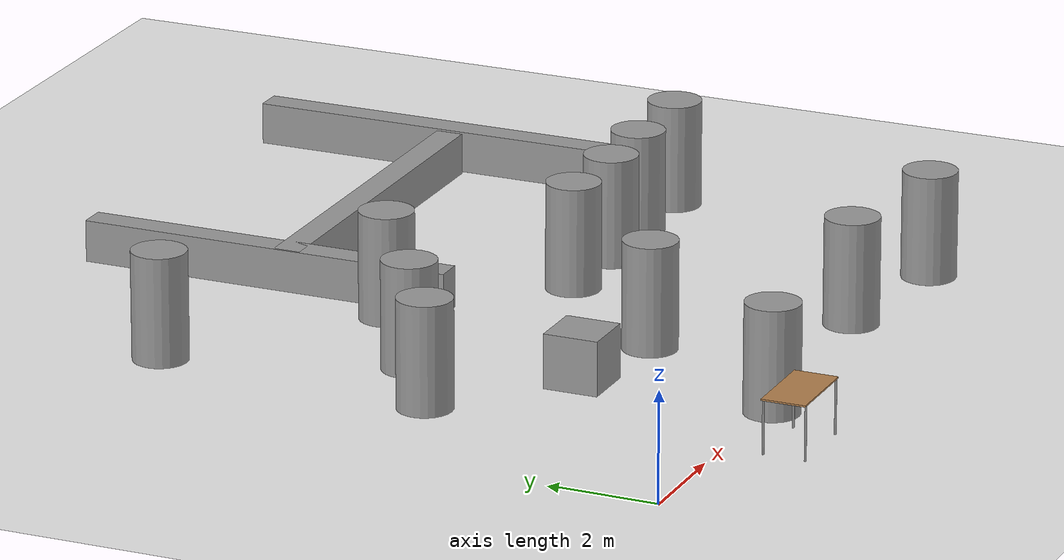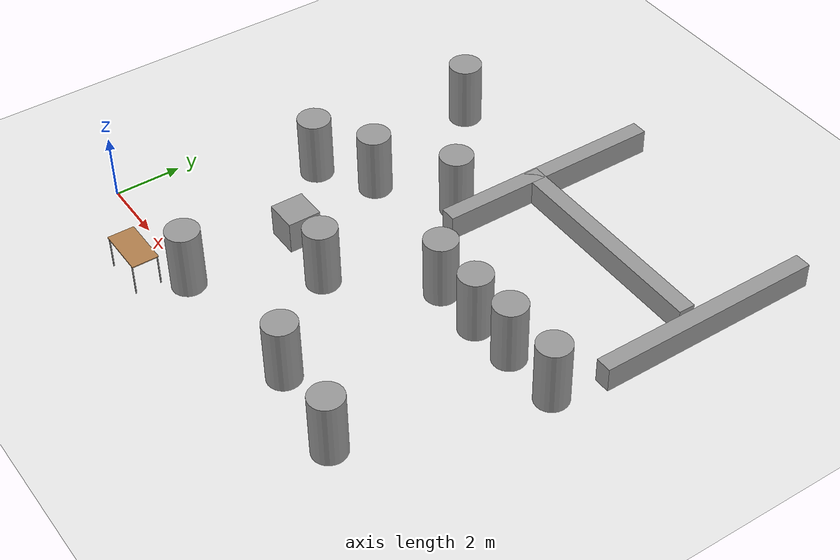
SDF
<sdf version="1.6">
 <world name="default">
  <model name="ground_plane">
   <static>1</static>
   <link name="link">
    <collision name="collision">
     <geometry><plane><normal>0 0 1</normal><size>100 100</size></plane></geometry>
     <surface><friction><ode><mu>100</mu><mu2>50</mu2></ode></friction></surface>
    </collision>
    <visual name="visual">
     <geometry><plane><normal>0 0 1</normal><size>100 100</size></plane></geometry>
     <material>
      <script><uri>file://media/materials/scripts/gazebo.material</uri><name>Gazebo/White</name></script>
     </material>
    </visual>
   </link>
  </model>
  <model name="unit_cylinder_5">
   <link name="link">
    <inertial>
     <mass>1</mass>
     <inertia><ixx>0.145833</ixx><ixy>0</ixy><ixz>0</ixz><iyy>0.145833</iyy><iyz>0</iyz><izz>0.125</izz></inertia>
    </inertial>
    <visual name="visual">
     <geometry><cylinder><radius>0.5</radius><length>2</length></cylinder></geometry>
     <material>
      <script><name>Gazebo/Grey</name><uri>file://media/materials/scripts/gazebo.material</uri></script>
      <ambient>0.3 0.3 0.3 1</ambient>
      <diffuse>0.7 0.7 0.7 1</diffuse>
      <specular>0.01 0.01 0.01 1</specular>
      <emissive>0 0 0 1</emissive>
      <shader type="vertex"><normal_map>__default__</normal_map></shader>
     </material>
    </visual>
    <collision name="collision">
     <geometry><cylinder><radius>0.5</radius><length>2</length></cylinder></geometry>
     <surface>
      <friction>
       <ode><mu>1</mu><mu2>1</mu2><fdir1>0 0 0</fdir1><slip1>0</slip1><slip2>0</slip2></ode>
       <torsional>
        <coefficient>1</coefficient>
        <patch_radius>0</patch_radius>
        <surface_radius>0</surface_radius>
        <use_patch_radius>1</use_patch_radius>
        <ode><slip>0</slip></ode>
       </torsional>
      </friction>
      <bounce><restitution_coefficient>0</restitution_coefficient><threshold>1e+06</threshold></bounce>
      <contact>
       <collide_without_contact>0</collide_without_contact>
       <collide_without_contact_bitmask>1</collide_without_contact_bitmask>
       <collide_bitmask>1</collide_bitmask>
       <ode>
        <soft_cfm>0</soft_cfm>
        <soft_erp>0.2</soft_erp>
        <kp>1e+13</kp>
        <kd>1</kd>
        <max_vel>0.01</max_vel>
        <min_depth>0</min_depth>
       </ode>
       <bullet>
        <split_impulse>1</split_impulse>
        <split_impulse_penetration_threshold>-0.01</split_impulse_penetration_threshold>
        <soft_cfm>0</soft_cfm>
        <soft_erp>0.2</soft_erp>
        <kp>1e+13</kp>
        <kd>1</kd>
       </bullet>
      </contact>
     </surface>
    </collision>
   </link>
   <static>0</static>
   <pose>4.65515 -0.124311 0.999884 2.2e-05 -2e-06 0.004615</pose>
  </model>
  <model name="unit_cylinder_5_clone_6">
   <link name="link">
    <inertial>
     <mass>1</mass>
     <inertia><ixx>0.145833</ixx><ixy>0</ixy><ixz>0</ixz><iyy>0.145833</iyy><iyz>0</iyz><izz>0.125</izz></inertia>
    </inertial>
    <visual name="visual">
     <geometry><cylinder><radius>0.5</radius><length>2</length></cylinder></geometry>
     <material>
      <script><name>Gazebo/Grey</name><uri>file://media/materials/scripts/gazebo.material</uri></script>
      <ambient>0.3 0.3 0.3 1</ambient>
      <diffuse>0.7 0.7 0.7 1</diffuse>
      <specular>0.01 0.01 0.01 1</specular>
      <emissive>0 0 0 1</emissive>
      <shader type="vertex"><normal_map>__default__</normal_map></shader>
     </material>
    </visual>
    <collision name="collision">
     <geometry><cylinder><radius>0.5</radius><length>2</length></cylinder></geometry>
     <surface>
      <friction>
       <ode><mu>1</mu><mu2>1</mu2><fdir1>0 0 0</fdir1><slip1>0</slip1><slip2>0</slip2></ode>
       <torsional>
        <coefficient>1</coefficient>
        <patch_radius>0</patch_radius>
        <surface_radius>0</surface_radius>
        <use_patch_radius>1</use_patch_radius>
        <ode><slip>0</slip></ode>
       </torsional>
      </friction>
      <bounce><restitution_coefficient>0</restitution_coefficient><threshold>1e+06</threshold></bounce>
      <contact>
       <collide_without_contact>0</collide_without_contact>
       <collide_without_contact_bitmask>1</collide_without_contact_bitmask>
       <collide_bitmask>1</collide_bitmask>
       <ode>
        <soft_cfm>0</soft_cfm>
        <soft_erp>0.2</soft_erp>
        <kp>1e+13</kp>
        <kd>1</kd>
        <max_vel>0.01</max_vel>
        <min_depth>0</min_depth>
       </ode>
       <bullet>
        <split_impulse>1</split_impulse>
        <split_impulse_penetration_threshold>-0.01</split_impulse_penetration_threshold>
        <soft_cfm>0</soft_cfm>
        <soft_erp>0.2</soft_erp>
        <kp>1e+13</kp>
        <kd>1</kd>
       </bullet>
      </contact>
     </surface>
    </collision>
   </link>
   <static>0</static>
   <pose>6.68619 2.97584 0.999884 2.2e-05 -1e-06 1.9e-05</pose>
  </model>
  <model name="unit_box_0">
   <pose>4.62964 3.37332 0.499944 2e-06 0.000108 -0.001429</pose>
   <link name="link">
    <inertial>
     <mass>1</mass>
     <inertia>
      <ixx>0.166667</ixx>
      <ixy>0</ixy>
      <ixz>0</ixz>
      <iyy>0.166667</iyy>
      <iyz>0</iyz>
      <izz>0.166667</izz>
     </inertia>
    </inertial>
    <collision name="collision"><geometry><box><size>1 1 1</size></box></geometry></collision>
    <visual name="visual">
     <geometry><box><size>1 1 1</size></box></geometry>
     <material>
      <script><name>Gazebo/Grey</name><uri>file://media/materials/scripts/gazebo.material</uri></script>
     </material>
    </visual>
   </link>
  </model>
  <model name="unit_cylinder_5_clone_1_clone">
   <link name="link">
    <inertial>
     <mass>1</mass>
     <inertia><ixx>0.145833</ixx><ixy>0</ixy><ixz>0</ixz><iyy>0.145833</iyy><iyz>0</iyz><izz>0.125</izz></inertia>
    </inertial>
    <visual name="visual">
     <geometry><cylinder><radius>0.5</radius><length>2</length></cylinder></geometry>
     <material>
      <script><name>Gazebo/Grey</name><uri>file://media/materials/scripts/gazebo.material</uri></script>
      <ambient>0.3 0.3 0.3 1</ambient>
      <diffuse>0.7 0.7 0.7 1</diffuse>
      <specular>0.01 0.01 0.01 1</specular>
      <emissive>0 0 0 1</emissive>
      <shader type="vertex"><normal_map>__default__</normal_map></shader>
     </material>
    </visual>
    <collision name="collision">
     <geometry><cylinder><radius>0.5</radius><length>2</length></cylinder></geometry>
     <surface>
      <friction>
       <ode><mu>1</mu><mu2>1</mu2><fdir1>0 0 0</fdir1><slip1>0</slip1><slip2>0</slip2></ode>
       <torsional>
        <coefficient>1</coefficient>
        <patch_radius>0</patch_radius>
        <surface_radius>0</surface_radius>
        <use_patch_radius>1</use_patch_radius>
        <ode><slip>0</slip></ode>
       </torsional>
      </friction>
      <bounce><restitution_coefficient>0</restitution_coefficient><threshold>1e+06</threshold></bounce>
      <contact>
       <collide_without_contact>0</collide_without_contact>
       <collide_without_contact_bitmask>1</collide_without_contact_bitmask>
       <collide_bitmask>1</collide_bitmask>
       <ode>
        <soft_cfm>0</soft_cfm>
        <soft_erp>0.2</soft_erp>
        <kp>1e+13</kp>
        <kd>1</kd>
        <max_vel>0.01</max_vel>
        <min_depth>0</min_depth>
       </ode>
       <bullet>
        <split_impulse>1</split_impulse>
        <split_impulse_penetration_threshold>-0.01</split_impulse_penetration_threshold>
        <soft_cfm>0</soft_cfm>
        <soft_erp>0.2</soft_erp>
        <kp>1e+13</kp>
        <kd>1</kd>
       </bullet>
      </contact>
     </surface>
    </collision>
   </link>
   <static>0</static>
   <pose>2.48657 5.3464 0.999884 2.2e-05 -1e-06 -0.002392</pose>
  </model>
  <model name="unit_cylinder_5_clone_0_clone_4">
   <link name="link">
    <inertial>
     <mass>1</mass>
     <inertia><ixx>0.145833</ixx><ixy>0</ixy><ixz>0</ixz><iyy>0.145833</iyy><iyz>0</iyz><izz>0.125</izz></inertia>
    </inertial>
    <visual name="visual">
     <geometry><cylinder><radius>0.5</radius><length>2</length></cylinder></geometry>
     <material>
      <script><name>Gazebo/Grey</name><uri>file://media/materials/scripts/gazebo.material</uri></script>
      <ambient>0.3 0.3 0.3 1</ambient>
      <diffuse>0.7 0.7 0.7 1</diffuse>
      <specular>0.01 0.01 0.01 1</specular>
      <emissive>0 0 0 1</emissive>
      <shader type="vertex"><normal_map>__default__</normal_map></shader>
     </material>
    </visual>
    <collision name="collision">
     <geometry><cylinder><radius>0.5</radius><length>2</length></cylinder></geometry>
     <surface>
      <friction>
       <ode><mu>1</mu><mu2>1</mu2><fdir1>0 0 0</fdir1><slip1>0</slip1><slip2>0</slip2></ode>
       <torsional>
        <coefficient>1</coefficient>
        <patch_radius>0</patch_radius>
        <surface_radius>0</surface_radius>
        <use_patch_radius>1</use_patch_radius>
        <ode><slip>0</slip></ode>
       </torsional>
      </friction>
      <bounce><restitution_coefficient>0</restitution_coefficient><threshold>1e+06</threshold></bounce>
      <contact>
       <collide_without_contact>0</collide_without_contact>
       <collide_without_contact_bitmask>1</collide_without_contact_bitmask>
       <collide_bitmask>1</collide_bitmask>
       <ode>
        <soft_cfm>0</soft_cfm>
        <soft_erp>0.2</soft_erp>
        <kp>1e+13</kp>
        <kd>1</kd>
        <max_vel>0.01</max_vel>
        <min_depth>0</min_depth>
       </ode>
       <bullet>
        <split_impulse>1</split_impulse>
        <split_impulse_penetration_threshold>-0.01</split_impulse_penetration_threshold>
        <soft_cfm>0</soft_cfm>
        <soft_erp>0.2</soft_erp>
        <kp>1e+13</kp>
        <kd>1</kd>
       </bullet>
      </contact>
     </surface>
    </collision>
   </link>
   <static>0</static>
   <pose>6.23609 7.78207 0.999884 2.2e-05 -1e-06 0.001775</pose>
  </model>
  <model name="unit_cylinder_5_clone_0_clone_5">
   <link name="link">
    <inertial>
     <mass>1</mass>
     <inertia><ixx>0.145833</ixx><ixy>0</ixy><ixz>0</ixz><iyy>0.145833</iyy><iyz>0</iyz><izz>0.125</izz></inertia>
    </inertial>
    <visual name="visual">
     <geometry><cylinder><radius>0.5</radius><length>2</length></cylinder></geometry>
     <material>
      <script><name>Gazebo/Grey</name><uri>file://media/materials/scripts/gazebo.material</uri></script>
      <ambient>0.3 0.3 0.3 1</ambient>
      <diffuse>0.7 0.7 0.7 1</diffuse>
      <specular>0.01 0.01 0.01 1</specular>
      <emissive>0 0 0 1</emissive>
      <shader type="vertex"><normal_map>__default__</normal_map></shader>
     </material>
    </visual>
    <collision name="collision">
     <geometry><cylinder><radius>0.5</radius><length>2</length></cylinder></geometry>
     <surface>
      <friction>
       <ode><mu>1</mu><mu2>1</mu2><fdir1>0 0 0</fdir1><slip1>0</slip1><slip2>0</slip2></ode>
       <torsional>
        <coefficient>1</coefficient>
        <patch_radius>0</patch_radius>
        <surface_radius>0</surface_radius>
        <use_patch_radius>1</use_patch_radius>
        <ode><slip>0</slip></ode>
       </torsional>
      </friction>
      <bounce><restitution_coefficient>0</restitution_coefficient><threshold>1e+06</threshold></bounce>
      <contact>
       <collide_without_contact>0</collide_without_contact>
       <collide_without_contact_bitmask>1</collide_without_contact_bitmask>
       <collide_bitmask>1</collide_bitmask>
       <ode>
        <soft_cfm>0</soft_cfm>
        <soft_erp>0.2</soft_erp>
        <kp>1e+13</kp>
        <kd>1</kd>
        <max_vel>0.01</max_vel>
        <min_depth>0</min_depth>
       </ode>
       <bullet>
        <split_impulse>1</split_impulse>
        <split_impulse_penetration_threshold>-0.01</split_impulse_penetration_threshold>
        <soft_cfm>0</soft_cfm>
        <soft_erp>0.2</soft_erp>
        <kp>1e+13</kp>
        <kd>1</kd>
       </bullet>
      </contact>
     </surface>
    </collision>
   </link>
   <static>0</static>
   <pose>4.1001 6.37052 0.999884 2.2e-05 -1e-06 0.001515</pose>
  </model>
  <model name="unit_cylinder_5_clone_7_clone">
   <link name="link">
    <inertial>
     <mass>1</mass>
     <inertia><ixx>0.145833</ixx><ixy>0</ixy><ixz>0</ixz><iyy>0.145833</iyy><iyz>0</iyz><izz>0.125</izz></inertia>
    </inertial>
    <visual name="visual">
     <geometry><cylinder><radius>0.5</radius><length>2</length></cylinder></geometry>
     <material>
      <script><name>Gazebo/Grey</name><uri>file://media/materials/scripts/gazebo.material</uri></script>
      <ambient>0.3 0.3 0.3 1</ambient>
      <diffuse>0.7 0.7 0.7 1</diffuse>
      <specular>0.01 0.01 0.01 1</specular>
      <emissive>0 0 0 1</emissive>
      <shader type="vertex"><normal_map>__default__</normal_map></shader>
     </material>
    </visual>
    <collision name="collision">
     <geometry><cylinder><radius>0.5</radius><length>2</length></cylinder></geometry>
     <surface>
      <friction>
       <ode><mu>1</mu><mu2>1</mu2><fdir1>0 0 0</fdir1><slip1>0</slip1><slip2>0</slip2></ode>
       <torsional>
        <coefficient>1</coefficient>
        <patch_radius>0</patch_radius>
        <surface_radius>0</surface_radius>
        <use_patch_radius>1</use_patch_radius>
        <ode><slip>0</slip></ode>
       </torsional>
      </friction>
      <bounce><restitution_coefficient>0</restitution_coefficient><threshold>1e+06</threshold></bounce>
      <contact>
       <collide_without_contact>0</collide_without_contact>
       <collide_without_contact_bitmask>1</collide_without_contact_bitmask>
       <collide_bitmask>1</collide_bitmask>
       <ode>
        <soft_cfm>0</soft_cfm>
        <soft_erp>0.2</soft_erp>
        <kp>1e+13</kp>
        <kd>1</kd>
        <max_vel>0.01</max_vel>
        <min_depth>0</min_depth>
       </ode>
       <bullet>
        <split_impulse>1</split_impulse>
        <split_impulse_penetration_threshold>-0.01</split_impulse_penetration_threshold>
        <soft_cfm>0</soft_cfm>
        <soft_erp>0.2</soft_erp>
        <kp>1e+13</kp>
        <kd>1</kd>
       </bullet>
      </contact>
     </surface>
    </collision>
   </link>
   <static>0</static>
   <pose>8.9336 5.3909 0.999884 2.2e-05 -1e-06 0.002182</pose>
  </model>
  <model name="unit_cylinder_5_clone_7_clone_0">
   <link name="link">
    <inertial>
     <mass>1</mass>
     <inertia><ixx>0.145833</ixx><ixy>0</ixy><ixz>0</ixz><iyy>0.145833</iyy><iyz>0</iyz><izz>0.125</izz></inertia>
    </inertial>
    <visual name="visual">
     <geometry><cylinder><radius>0.5</radius><length>2</length></cylinder></geometry>
     <material>
      <script><name>Gazebo/Grey</name><uri>file://media/materials/scripts/gazebo.material</uri></script>
      <ambient>0.3 0.3 0.3 1</ambient>
      <diffuse>0.7 0.7 0.7 1</diffuse>
      <specular>0.01 0.01 0.01 1</specular>
      <emissive>0 0 0 1</emissive>
      <shader type="vertex"><normal_map>__default__</normal_map></shader>
     </material>
    </visual>
    <collision name="collision">
     <geometry><cylinder><radius>0.5</radius><length>2</length></cylinder></geometry>
     <surface>
      <friction>
       <ode><mu>1</mu><mu2>1</mu2><fdir1>0 0 0</fdir1><slip1>0</slip1><slip2>0</slip2></ode>
       <torsional>
        <coefficient>1</coefficient>
        <patch_radius>0</patch_radius>
        <surface_radius>0</surface_radius>
        <use_patch_radius>1</use_patch_radius>
        <ode><slip>0</slip></ode>
       </torsional>
      </friction>
      <bounce><restitution_coefficient>0</restitution_coefficient><threshold>1e+06</threshold></bounce>
      <contact>
       <collide_without_contact>0</collide_without_contact>
       <collide_without_contact_bitmask>1</collide_without_contact_bitmask>
       <collide_bitmask>1</collide_bitmask>
       <ode>
        <soft_cfm>0</soft_cfm>
        <soft_erp>0.2</soft_erp>
        <kp>1e+13</kp>
        <kd>1</kd>
        <max_vel>0.01</max_vel>
        <min_depth>0</min_depth>
       </ode>
       <bullet>
        <split_impulse>1</split_impulse>
        <split_impulse_penetration_threshold>-0.01</split_impulse_penetration_threshold>
        <soft_cfm>0</soft_cfm>
        <soft_erp>0.2</soft_erp>
        <kp>1e+13</kp>
        <kd>1</kd>
       </bullet>
      </contact>
     </surface>
    </collision>
   </link>
   <static>0</static>
   <pose>10.566 5.36923 0.999884 2.2e-05 -1e-06 0.002145</pose>
  </model>
  <model name="unit_cylinder_5_clone_7_clone_1">
   <link name="link">
    <inertial>
     <mass>1</mass>
     <inertia><ixx>0.145833</ixx><ixy>0</ixy><ixz>0</ixz><iyy>0.145833</iyy><iyz>0</iyz><izz>0.125</izz></inertia>
    </inertial>
    <visual name="visual">
     <geometry><cylinder><radius>0.5</radius><length>2</length></cylinder></geometry>
     <material>
      <script><name>Gazebo/Grey</name><uri>file://media/materials/scripts/gazebo.material</uri></script>
      <ambient>0.3 0.3 0.3 1</ambient>
      <diffuse>0.7 0.7 0.7 1</diffuse>
      <specular>0.01 0.01 0.01 1</specular>
      <emissive>0 0 0 1</emissive>
      <shader type="vertex"><normal_map>__default__</normal_map></shader>
     </material>
    </visual>
    <collision name="collision">
     <geometry><cylinder><radius>0.5</radius><length>2</length></cylinder></geometry>
     <surface>
      <friction>
       <ode><mu>1</mu><mu2>1</mu2><fdir1>0 0 0</fdir1><slip1>0</slip1><slip2>0</slip2></ode>
       <torsional>
        <coefficient>1</coefficient>
        <patch_radius>0</patch_radius>
        <surface_radius>0</surface_radius>
        <use_patch_radius>1</use_patch_radius>
        <ode><slip>0</slip></ode>
       </torsional>
      </friction>
      <bounce><restitution_coefficient>0</restitution_coefficient><threshold>1e+06</threshold></bounce>
      <contact>
       <collide_without_contact>0</collide_without_contact>
       <collide_without_contact_bitmask>1</collide_without_contact_bitmask>
       <collide_bitmask>1</collide_bitmask>
       <ode>
        <soft_cfm>0</soft_cfm>
        <soft_erp>0.2</soft_erp>
        <kp>1e+13</kp>
        <kd>1</kd>
        <max_vel>0.01</max_vel>
        <min_depth>0</min_depth>
       </ode>
       <bullet>
        <split_impulse>1</split_impulse>
        <split_impulse_penetration_threshold>-0.01</split_impulse_penetration_threshold>
        <soft_cfm>0</soft_cfm>
        <soft_erp>0.2</soft_erp>
        <kp>1e+13</kp>
        <kd>1</kd>
       </bullet>
      </contact>
     </surface>
    </collision>
   </link>
   <static>0</static>
   <pose>11.9935 5.45437 0.999884 2.2e-05 -1e-06 0.002185</pose>
  </model>
  <model name="unit_cylinder_5_clone_7_clone_2">
   <link name="link">
    <inertial>
     <mass>1</mass>
     <inertia><ixx>0.145833</ixx><ixy>0</ixy><ixz>0</ixz><iyy>0.145833</iyy><iyz>0</iyz><izz>0.125</izz></inertia>
    </inertial>
    <visual name="visual">
     <geometry><cylinder><radius>0.5</radius><length>2</length></cylinder></geometry>
     <material>
      <script><name>Gazebo/Grey</name><uri>file://media/materials/scripts/gazebo.material</uri></script>
      <ambient>0.3 0.3 0.3 1</ambient>
      <diffuse>0.7 0.7 0.7 1</diffuse>
      <specular>0.01 0.01 0.01 1</specular>
      <emissive>0 0 0 1</emissive>
      <shader type="vertex"><normal_map>__default__</normal_map></shader>
     </material>
    </visual>
    <collision name="collision">
     <geometry><cylinder><radius>0.5</radius><length>2</length></cylinder></geometry>
     <surface>
      <friction>
       <ode><mu>1</mu><mu2>1</mu2><fdir1>0 0 0</fdir1><slip1>0</slip1><slip2>0</slip2></ode>
       <torsional>
        <coefficient>1</coefficient>
        <patch_radius>0</patch_radius>
        <surface_radius>0</surface_radius>
        <use_patch_radius>1</use_patch_radius>
        <ode><slip>0</slip></ode>
       </torsional>
      </friction>
      <bounce><restitution_coefficient>0</restitution_coefficient><threshold>1e+06</threshold></bounce>
      <contact>
       <collide_without_contact>0</collide_without_contact>
       <collide_without_contact_bitmask>1</collide_without_contact_bitmask>
       <collide_bitmask>1</collide_bitmask>
       <ode>
        <soft_cfm>0</soft_cfm>
        <soft_erp>0.2</soft_erp>
        <kp>1e+13</kp>
        <kd>1</kd>
        <max_vel>0.01</max_vel>
        <min_depth>0</min_depth>
       </ode>
       <bullet>
        <split_impulse>1</split_impulse>
        <split_impulse_penetration_threshold>-0.01</split_impulse_penetration_threshold>
        <soft_cfm>0</soft_cfm>
        <soft_erp>0.2</soft_erp>
        <kp>1e+13</kp>
        <kd>1</kd>
       </bullet>
      </contact>
     </surface>
    </collision>
   </link>
   <static>0</static>
   <pose>13.789 5.49374 0.999884 2.2e-05 -1e-06 0.002209</pose>
  </model>
  <model name="unit_cylinder_5_clone_7_clone_4_clone_1">
   <link name="link">
    <inertial>
     <mass>1</mass>
     <inertia><ixx>0.145833</ixx><ixy>0</ixy><ixz>0</ixz><iyy>0.145833</iyy><iyz>0</iyz><izz>0.125</izz></inertia>
    </inertial>
    <visual name="visual">
     <geometry><cylinder><radius>0.5</radius><length>2</length></cylinder></geometry>
     <material>
      <script><name>Gazebo/Grey</name><uri>file://media/materials/scripts/gazebo.material</uri></script>
      <ambient>0.3 0.3 0.3 1</ambient>
      <diffuse>0.7 0.7 0.7 1</diffuse>
      <specular>0.01 0.01 0.01 1</specular>
      <emissive>0 0 0 1</emissive>
      <shader type="vertex"><normal_map>__default__</normal_map></shader>
     </material>
    </visual>
    <collision name="collision">
     <geometry><cylinder><radius>0.5</radius><length>2</length></cylinder></geometry>
     <surface>
      <friction>
       <ode><mu>1</mu><mu2>1</mu2><fdir1>0 0 0</fdir1><slip1>0</slip1><slip2>0</slip2></ode>
       <torsional>
        <coefficient>1</coefficient>
        <patch_radius>0</patch_radius>
        <surface_radius>0</surface_radius>
        <use_patch_radius>1</use_patch_radius>
        <ode><slip>0</slip></ode>
       </torsional>
      </friction>
      <bounce><restitution_coefficient>0</restitution_coefficient><threshold>1e+06</threshold></bounce>
      <contact>
       <collide_without_contact>0</collide_without_contact>
       <collide_without_contact_bitmask>1</collide_without_contact_bitmask>
       <collide_bitmask>1</collide_bitmask>
       <ode>
        <soft_cfm>0</soft_cfm>
        <soft_erp>0.2</soft_erp>
        <kp>1e+13</kp>
        <kd>1</kd>
        <max_vel>0.01</max_vel>
        <min_depth>0</min_depth>
       </ode>
       <bullet>
        <split_impulse>1</split_impulse>
        <split_impulse_penetration_threshold>-0.01</split_impulse_penetration_threshold>
        <soft_cfm>0</soft_cfm>
        <soft_erp>0.2</soft_erp>
        <kp>1e+13</kp>
        <kd>1</kd>
       </bullet>
      </contact>
     </surface>
    </collision>
   </link>
   <static>0</static>
   <pose>12.0417 -0.137089 0.999884 2.2e-05 -1e-06 0.002322</pose>
  </model>
  <model name="unit_cylinder_5_clone_7_clone_4_clone_2">
   <link name="link">
    <inertial>
     <mass>1</mass>
     <inertia><ixx>0.145833</ixx><ixy>0</ixy><ixz>0</ixz><iyy>0.145833</iyy><iyz>0</iyz><izz>0.125</izz></inertia>
    </inertial>
    <visual name="visual">
     <geometry><cylinder><radius>0.5</radius><length>2</length></cylinder></geometry>
     <material>
      <script><name>Gazebo/Grey</name><uri>file://media/materials/scripts/gazebo.material</uri></script>
      <ambient>0.3 0.3 0.3 1</ambient>
      <diffuse>0.7 0.7 0.7 1</diffuse>
      <specular>0.01 0.01 0.01 1</specular>
      <emissive>0 0 0 1</emissive>
      <shader type="vertex"><normal_map>__default__</normal_map></shader>
     </material>
    </visual>
    <collision name="collision">
     <geometry><cylinder><radius>0.5</radius><length>2</length></cylinder></geometry>
     <surface>
      <friction>
       <ode><mu>1</mu><mu2>1</mu2><fdir1>0 0 0</fdir1><slip1>0</slip1><slip2>0</slip2></ode>
       <torsional>
        <coefficient>1</coefficient>
        <patch_radius>0</patch_radius>
        <surface_radius>0</surface_radius>
        <use_patch_radius>1</use_patch_radius>
        <ode><slip>0</slip></ode>
       </torsional>
      </friction>
      <bounce><restitution_coefficient>0</restitution_coefficient><threshold>1e+06</threshold></bounce>
      <contact>
       <collide_without_contact>0</collide_without_contact>
       <collide_without_contact_bitmask>1</collide_without_contact_bitmask>
       <collide_bitmask>1</collide_bitmask>
       <ode>
        <soft_cfm>0</soft_cfm>
        <soft_erp>0.2</soft_erp>
        <kp>1e+13</kp>
        <kd>1</kd>
        <max_vel>0.01</max_vel>
        <min_depth>0</min_depth>
       </ode>
       <bullet>
        <split_impulse>1</split_impulse>
        <split_impulse_penetration_threshold>-0.01</split_impulse_penetration_threshold>
        <soft_cfm>0</soft_cfm>
        <soft_erp>0.2</soft_erp>
        <kp>1e+13</kp>
        <kd>1</kd>
       </bullet>
      </contact>
     </surface>
    </collision>
   </link>
   <static>0</static>
   <pose>9.21358 0.228041 0.999884 2.2e-05 -1e-06 0.002331</pose>
  </model>
  <model name="unit_cylinder_5_clone_0_clone_4_clone">
   <link name="link">
    <inertial>
     <mass>1</mass>
     <inertia><ixx>0.145833</ixx><ixy>0</ixy><ixz>0</ixz><iyy>0.145833</iyy><iyz>0</iyz><izz>0.125</izz></inertia>
    </inertial>
    <visual name="visual">
     <geometry><cylinder><radius>0.5</radius><length>2</length></cylinder></geometry>
     <material>
      <script><name>Gazebo/Grey</name><uri>file://media/materials/scripts/gazebo.material</uri></script>
      <ambient>0.3 0.3 0.3 1</ambient>
      <diffuse>0.7 0.7 0.7 1</diffuse>
      <specular>0.01 0.01 0.01 1</specular>
      <emissive>0 0 0 1</emissive>
      <shader type="vertex"><normal_map>__default__</normal_map></shader>
     </material>
    </visual>
    <collision name="collision">
     <geometry><cylinder><radius>0.5</radius><length>2</length></cylinder></geometry>
     <surface>
      <friction>
       <ode><mu>1</mu><mu2>1</mu2><fdir1>0 0 0</fdir1><slip1>0</slip1><slip2>0</slip2></ode>
       <torsional>
        <coefficient>1</coefficient>
        <patch_radius>0</patch_radius>
        <surface_radius>0</surface_radius>
        <use_patch_radius>1</use_patch_radius>
        <ode><slip>0</slip></ode>
       </torsional>
      </friction>
      <bounce><restitution_coefficient>0</restitution_coefficient><threshold>1e+06</threshold></bounce>
      <contact>
       <collide_without_contact>0</collide_without_contact>
       <collide_without_contact_bitmask>1</collide_without_contact_bitmask>
       <collide_bitmask>1</collide_bitmask>
       <ode>
        <soft_cfm>0</soft_cfm>
        <soft_erp>0.2</soft_erp>
        <kp>1e+13</kp>
        <kd>1</kd>
        <max_vel>0.01</max_vel>
        <min_depth>0</min_depth>
       </ode>
       <bullet>
        <split_impulse>1</split_impulse>
        <split_impulse_penetration_threshold>-0.01</split_impulse_penetration_threshold>
        <soft_cfm>0</soft_cfm>
        <soft_erp>0.2</soft_erp>
        <kp>1e+13</kp>
        <kd>1</kd>
       </bullet>
      </contact>
     </surface>
    </collision>
   </link>
   <static>0</static>
   <pose>2.81053 10.5041 0.999884 2.2e-05 -2e-06 0.001444</pose>
  </model>
  <model name="low_wall">
   <link name="link">
    <inertial>
     <mass>1</mass>
     <inertia>
      <ixx>0.166667</ixx>
      <ixy>0</ixy>
      <ixz>0</ixz>
      <iyy>0.166667</iyy>
      <iyz>0</iyz>
      <izz>0.166667</izz>
     </inertia>
    </inertial>
    <kinematic>1</kinematic>
    <visual name="visual">
     <geometry><box><size>7 0.5 1.5</size></box></geometry>
     <material>
      <script><name>Gazebo/Grey</name><uri>file://media/materials/scripts/gazebo.material</uri></script>
      <shader type="pixel"><normal_map>__default__</normal_map></shader>
      <ambient>0.3 0.3 0.3 1</ambient>
      <diffuse>0.7 0.7 0.7 1</diffuse>
      <specular>0.01 0.01 0.01 1</specular>
      <emissive>0 0 0 1</emissive>
     </material>
     <pose>0 0 0 0 -0 1.57</pose>
    </visual>
    <collision name="collision">
     <pose>0 0 0 0 -0 1.57</pose>
     <geometry><box><size>7 0.5 1.5</size></box></geometry>
     <surface>
      <friction>
       <ode><mu>1</mu><mu2>1</mu2><fdir1>0 0 0</fdir1><slip1>0</slip1><slip2>0</slip2></ode>
       <torsional>
        <coefficient>1</coefficient>
        <patch_radius>0</patch_radius>
        <surface_radius>0</surface_radius>
        <use_patch_radius>1</use_patch_radius>
        <ode><slip>0</slip></ode>
       </torsional>
      </friction>
      <bounce><restitution_coefficient>0</restitution_coefficient><threshold>1e+06</threshold></bounce>
      <contact>
       <collide_without_contact>0</collide_without_contact>
       <collide_without_contact_bitmask>1</collide_without_contact_bitmask>
       <collide_bitmask>1</collide_bitmask>
       <ode>
        <soft_cfm>0</soft_cfm>
        <soft_erp>0.2</soft_erp>
        <kp>1e+13</kp>
        <kd>1</kd>
        <max_vel>0.01</max_vel>
        <min_depth>0</min_depth>
       </ode>
       <bullet>
        <split_impulse>1</split_impulse>
        <split_impulse_penetration_threshold>-0.01</split_impulse_penetration_threshold>
        <soft_cfm>0</soft_cfm>
        <soft_erp>0.2</soft_erp>
        <kp>1e+13</kp>
        <kd>1</kd>
       </bullet>
      </contact>
     </surface>
    </collision>
   </link>
   <link name="link_clone">
    <inertial>
     <mass>1</mass>
     <inertia>
      <ixx>0.166667</ixx>
      <ixy>0</ixy>
      <ixz>0</ixz>
      <iyy>0.166667</iyy>
      <iyz>0</iyz>
      <izz>0.166667</izz>
     </inertia>
    </inertial>
    <kinematic>1</kinematic>
    <pose>3.28868 -0.452257 0 0 -0 0</pose>
    <visual name="visual">
     <geometry><box><size>7 0.5 1.5</size></box></geometry>
     <material>
      <script><name>Gazebo/Grey</name><uri>file://media/materials/scripts/gazebo.material</uri></script>
      <shader type="pixel"><normal_map>__default__</normal_map></shader>
      <ambient>0.3 0.3 0.3 1</ambient>
      <diffuse>0.7 0.7 0.7 1</diffuse>
      <specular>0.01 0.01 0.01 1</specular>
      <emissive>0 0 0 1</emissive>
     </material>
    </visual>
    <collision name="collision">
     <geometry><box><size>7 0.5 1.5</size></box></geometry>
     <surface>
      <friction>
       <ode><mu>1</mu><mu2>1</mu2><fdir1>0 0 0</fdir1><slip1>0</slip1><slip2>0</slip2></ode>
       <torsional>
        <coefficient>1</coefficient>
        <patch_radius>0</patch_radius>
        <surface_radius>0</surface_radius>
        <use_patch_radius>1</use_patch_radius>
        <ode><slip>0</slip></ode>
       </torsional>
      </friction>
      <bounce><restitution_coefficient>0</restitution_coefficient><threshold>1e+06</threshold></bounce>
      <contact>
       <collide_without_contact>0</collide_without_contact>
       <collide_without_contact_bitmask>1</collide_without_contact_bitmask>
       <collide_bitmask>1</collide_bitmask>
       <ode>
        <soft_cfm>0</soft_cfm>
        <soft_erp>0.2</soft_erp>
        <kp>1e+13</kp>
        <kd>1</kd>
        <max_vel>0.01</max_vel>
        <min_depth>0</min_depth>
       </ode>
       <bullet>
        <split_impulse>1</split_impulse>
        <split_impulse_penetration_threshold>-0.01</split_impulse_penetration_threshold>
        <soft_cfm>0</soft_cfm>
        <soft_erp>0.2</soft_erp>
        <kp>1e+13</kp>
        <kd>1</kd>
       </bullet>
      </contact>
     </surface>
    </collision>
   </link>
   <static>0</static>
   <pose>7.01555 10.4371 0 0 -0 0</pose>
  </model>
  <model name="low_wall_clone">
   <link name="link">
    <inertial>
     <mass>1</mass>
     <inertia>
      <ixx>0.166667</ixx>
      <ixy>0</ixy>
      <ixz>0</ixz>
      <iyy>0.166667</iyy>
      <iyz>0</iyz>
      <izz>0.166667</izz>
     </inertia>
    </inertial>
    <kinematic>1</kinematic>
    <visual name="visual">
     <geometry><box><size>7 0.5 1.5</size></box></geometry>
     <material>
      <script><name>Gazebo/Grey</name><uri>file://media/materials/scripts/gazebo.material</uri></script>
      <shader type="pixel"><normal_map>__default__</normal_map></shader>
      <ambient>0.3 0.3 0.3 1</ambient>
      <diffuse>0.7 0.7 0.7 1</diffuse>
      <specular>0.01 0.01 0.01 1</specular>
      <emissive>0 0 0 1</emissive>
     </material>
     <pose>0 0 0 0 -0 1.57</pose>
    </visual>
    <collision name="collision">
     <pose>0 0 0 0 -0 1.57</pose>
     <geometry><box><size>7 0.5 1.5</size></box></geometry>
     <surface>
      <friction>
       <ode><mu>1</mu><mu2>1</mu2><fdir1>0 0 0</fdir1><slip1>0</slip1><slip2>0</slip2></ode>
       <torsional>
        <coefficient>1</coefficient>
        <patch_radius>0</patch_radius>
        <surface_radius>0</surface_radius>
        <use_patch_radius>1</use_patch_radius>
        <ode><slip>0</slip></ode>
       </torsional>
      </friction>
      <bounce><restitution_coefficient>0</restitution_coefficient><threshold>1e+06</threshold></bounce>
      <contact>
       <collide_without_contact>0</collide_without_contact>
       <collide_without_contact_bitmask>1</collide_without_contact_bitmask>
       <collide_bitmask>1</collide_bitmask>
       <ode>
        <soft_cfm>0</soft_cfm>
        <soft_erp>0.2</soft_erp>
        <kp>1e+13</kp>
        <kd>1</kd>
        <max_vel>0.01</max_vel>
        <min_depth>0</min_depth>
       </ode>
       <bullet>
        <split_impulse>1</split_impulse>
        <split_impulse_penetration_threshold>-0.01</split_impulse_penetration_threshold>
        <soft_cfm>0</soft_cfm>
        <soft_erp>0.2</soft_erp>
        <kp>1e+13</kp>
        <kd>1</kd>
       </bullet>
      </contact>
     </surface>
    </collision>
   </link>
   <static>0</static>
   <pose>14.1554 10.3514 0 0 -0 0</pose>
  </model>
  <model name="table">
   <static>1</static>
   <link name="link">
    <collision name="surface">
     <pose>0 0 1 0 -0 0</pose>
     <geometry><box><size>1.5 0.8 0.03</size></box></geometry>
     <surface><friction><ode><mu>0.6</mu><mu2>0.6</mu2></ode></friction></surface>
    </collision>
    <visual name="visual1">
     <pose>0 0 1 0 -0 0</pose>
     <geometry><box><size>1.5 0.8 0.03</size></box></geometry>
     <material>
      <script><uri>file://media/materials/scripts/gazebo.material</uri><name>Gazebo/Wood</name></script>
     </material>
    </visual>
    <collision name="front_left_leg">
     <pose>0.68 0.38 0.5 0 -0 0</pose>
     <geometry><cylinder><radius>0.02</radius><length>1</length></cylinder></geometry>
    </collision>
    <visual name="front_left_leg">
     <pose>0.68 0.38 0.5 0 -0 0</pose>
     <geometry><cylinder><radius>0.02</radius><length>1</length></cylinder></geometry>
     <material>
      <script><uri>file://media/materials/scripts/gazebo.material</uri><name>Gazebo/Grey</name></script>
     </material>
    </visual>
    <collision name="front_right_leg">
     <pose>0.68 -0.38 0.5 0 -0 0</pose>
     <geometry><cylinder><radius>0.02</radius><length>1</length></cylinder></geometry>
    </collision>
    <visual name="front_right_leg">
     <pose>0.68 -0.38 0.5 0 -0 0</pose>
     <geometry><cylinder><radius>0.02</radius><length>1</length></cylinder></geometry>
     <material>
      <script><uri>file://media/materials/scripts/gazebo.material</uri><name>Gazebo/Grey</name></script>
     </material>
    </visual>
    <collision name="back_right_leg">
     <pose>-0.68 -0.38 0.5 0 -0 0</pose>
     <geometry><cylinder><radius>0.02</radius><length>1</length></cylinder></geometry>
    </collision>
    <visual name="back_right_leg">
     <pose>-0.68 -0.38 0.5 0 -0 0</pose>
     <geometry><cylinder><radius>0.02</radius><length>1</length></cylinder></geometry>
     <material>
      <script><uri>file://media/materials/scripts/gazebo.material</uri><name>Gazebo/Grey</name></script>
     </material>
    </visual>
    <collision name="back_left_leg">
     <pose>-0.68 0.38 0.5 0 -0 0</pose>
     <geometry><cylinder><radius>0.02</radius><length>1</length></cylinder></geometry>
    </collision>
    <visual name="back_left_leg">
     <pose>-0.68 0.38 0.5 0 -0 0</pose>
     <geometry><cylinder><radius>0.02</radius><length>1</length></cylinder></geometry>
     <material>
      <script><uri>file://media/materials/scripts/gazebo.material</uri><name>Gazebo/Grey</name></script>
     </material>
    </visual>
   </link>
   <pose>3.45237 -1.1043 0 0 -0 0</pose>
  </model>
 </world>
</sdf>
